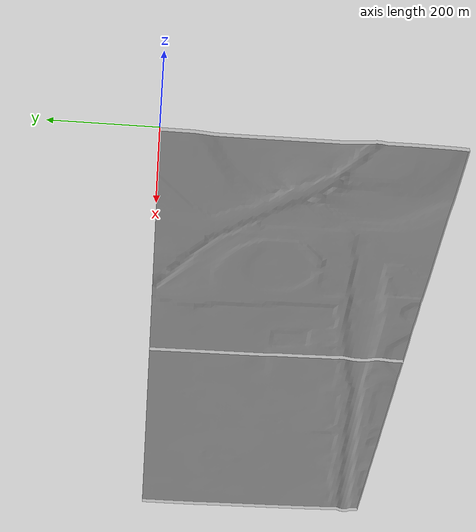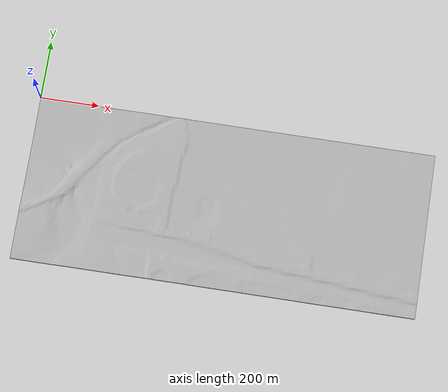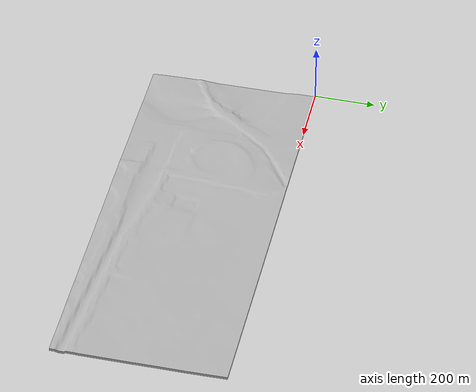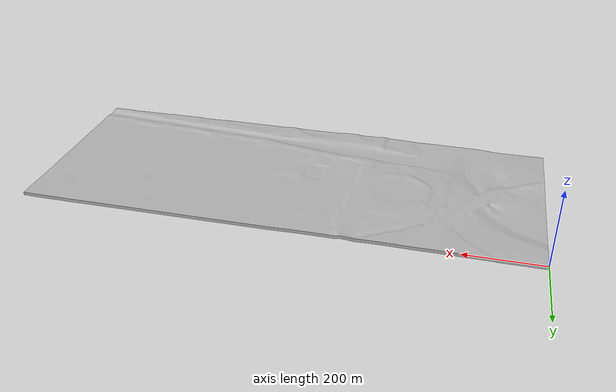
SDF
<?xml version="1.0"?>
<!--  |    This document was autogenerated by scene_to_spawner from novo3.obj                  |  -->
<!--  |    EDITING THIS FILE BY HAND IS NOT RECOMMENDED                                        |  -->
<sdf version="1.4">
  <model name="terrain">
    <static>true</static>
    <link name="link">
      <visual name="visual">
        <geometry>
          <mesh>
            <uri>file://$(env HOME)/usv_sim_lsa/src/usv_sim/terrain/diluvio5/novo3.obj</uri>
          </mesh>
        </geometry>
      </visual>
      <collision name="collision">
        <geometry>
          <mesh>
            <uri>file://$(env HOME)/usv_sim_lsa/src/usv_sim/terrain/diluvio5/novo3.obj</uri>
          </mesh>
        </geometry>
        <surface>
          <friction>
            <ode>
              <mu>100</mu>
              <mu2>50</mu2>
            </ode>
          </friction>
        </surface>
      </collision>
    </link>
  </model>
</sdf>
